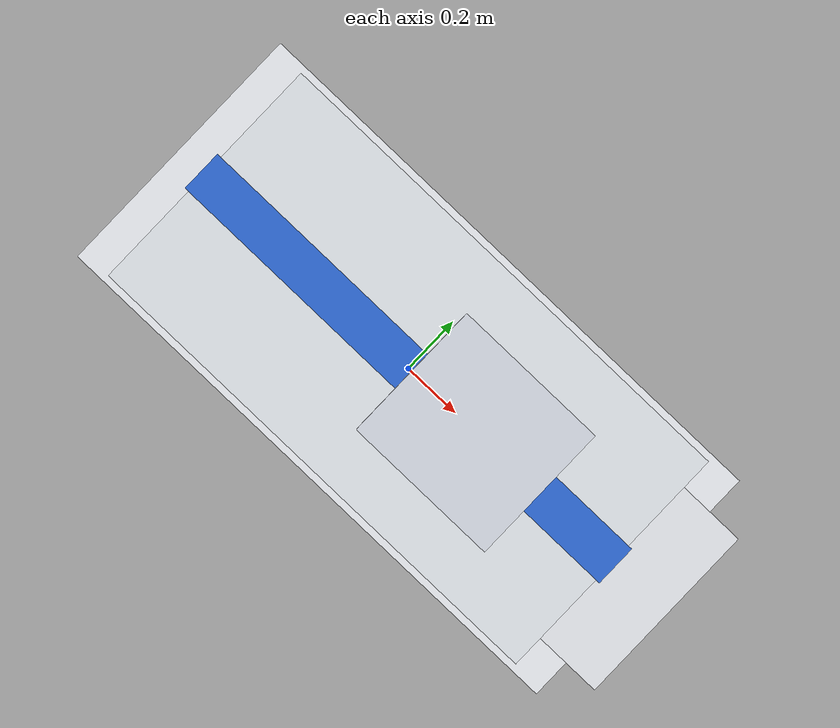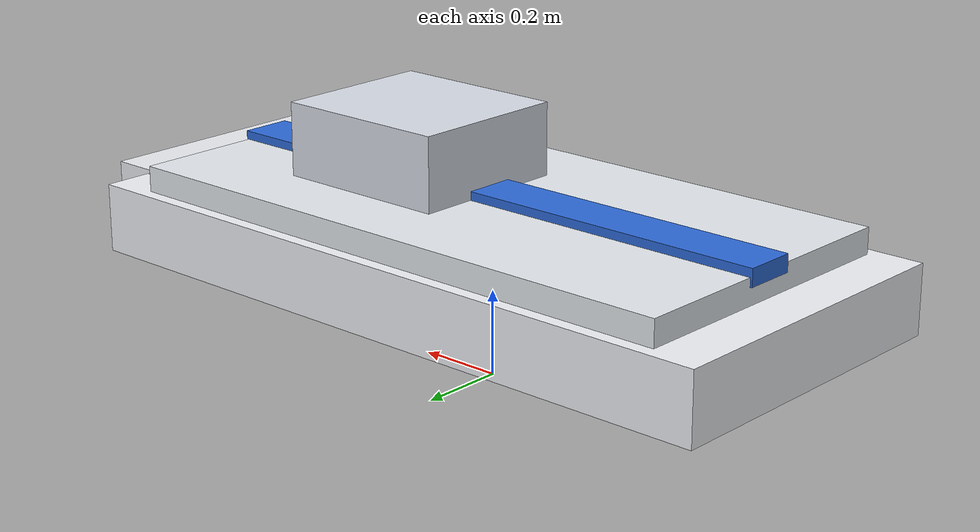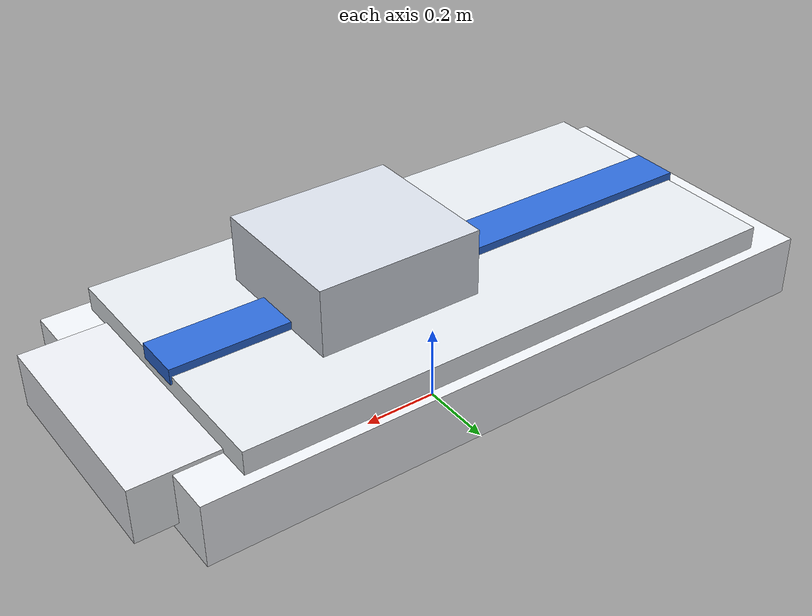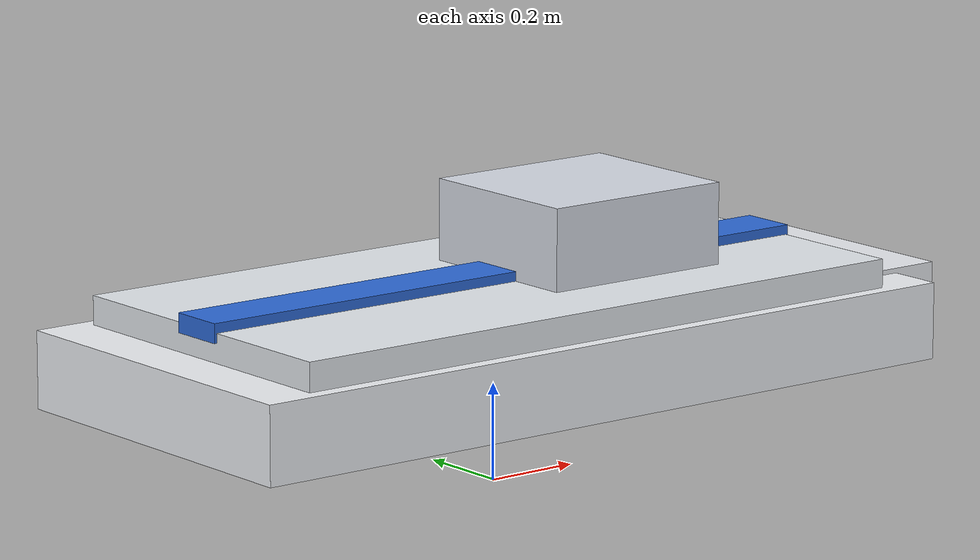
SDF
<?xml version="1.0" ?>
<sdf version="1.9">
  <model name="usv_model">
    <static>false</static>
    <pose>0 0 0.16 0 0 0</pose>

    <link name="base_link">
      <!-- SITL SetEntityPose yetkisi kaldirildi, fizik motoruna birakildi -->
      <gravity>true</gravity>
      <!-- Mass ve damping for stable motion on water -->
      <!-- FIX: Increased damping to reduce vibration, adjusted inertia for better stability -->
      <!-- m=18 kg; esdeger kutu ~ hull_collision 1.62 x 0.81 x 0.35 m, COM merkezde -->
      <inertial>
        <pose>0 0 0 0 0 0</pose>
        <mass>18.0</mass>
        <inertia>
          <ixx>1.168</ixx>
          <ixy>0</ixy>
          <ixz>0</ixz>
          <iyy>4.120</iyy>
          <iyz>0</iyz>
          <izz>4.921</izz>
        </inertia>
        <linear_damping>2.0</linear_damping>
        <angular_damping>1.0</angular_damping>
      </inertial>
      <!-- Basit tekne silueti: gergedan + guverte + konut; carpisma tek kutu. -->
      <!-- FIX: Fixed collision physics, better contact damping to reduce vibration -->
      <collision name="hull_collision">
        <pose>0 0 0.15 0 0 0</pose>
        <geometry>
          <box><size>1.62 0.81 0.35</size></box>
        </geometry>
        <surface>
          <friction>
            <ode>
              <mu>0.3</mu>
              <mu2>0.3</mu2>
            </ode>
          </friction>
          <contact>
            <ode>
              <soft_cfm>0.001</soft_cfm>
              <soft_erp>0.8</soft_erp>
              <max_vel>0.1</max_vel>
            </ode>
          </contact>
        </surface>
      </collision>

      <visual name="hull_bottom">
        <pose>0 0 0.12 0 0 0</pose>
        <geometry>
          <box><size>1.68 0.78 0.16</size></box>
        </geometry>
        <material>
          <ambient>0.92 0.93 0.95 1</ambient>
          <diffuse>0.94 0.95 0.97 1</diffuse>
          <specular>0.12 0.12 0.14 1</specular>
        </material>
      </visual>

      <visual name="deck">
        <pose>0 0 0.22 0 0 0</pose>
        <geometry>
          <box><size>1.45 0.72 0.08</size></box>
        </geometry>
        <material>
          <ambient>0.88 0.90 0.92 1</ambient>
          <diffuse>0.90 0.92 0.94 1</diffuse>
        </material>
      </visual>

      <visual name="stripe">
        <pose>0 0 0.26 0 0 0</pose>
        <geometry>
          <box><size>1.46 0.12 0.04</size></box>
        </geometry>
        <material>
          <ambient>0.15 0.35 0.72 1</ambient>
          <diffuse>0.18 0.42 0.85 1</diffuse>
        </material>
      </visual>

      <visual name="bow">
        <pose>0.78 0 0.14 0 0 0</pose>
        <geometry>
          <box><size>0.32 0.55 0.14</size></box>
        </geometry>
        <material>
          <ambient>0.90 0.91 0.93 1</ambient>
          <diffuse>0.92 0.93 0.95 1</diffuse>
        </material>
      </visual>

      <visual name="cabin">
        <pose>0.22 0 0.34 0 0 0</pose>
        <geometry>
          <box><size>0.42 0.38 0.18</size></box>
        </geometry>
        <material>
          <ambient>0.82 0.84 0.88 1</ambient>
          <diffuse>0.85 0.87 0.91 1</diffuse>
        </material>
      </visual>

      <!-- +X burun yönü; önceki 0.65 gövde ortasına yakındı, simde "kamera geriden" hissi için buruna yaklaştırıldı -->
      <sensor name="camera_sensor" type="camera">
        <pose>0.78 0 0.48 0 0.10 0</pose>
        <camera>
          <horizontal_fov>1.5708</horizontal_fov>
          <image>
            <width>640</width>
            <height>360</height>
            <format>R8G8B8</format>
          </image>
          <clip>
            <near>0.1</near>
            <far>50</far>
          </clip>
        </camera>
        <always_on>1</always_on>
        <update_rate>30</update_rate>
        <visualize>false</visualize>
        <topic>/camera/image_raw</topic>
      </sensor>

      <sensor name="lidar_sensor" type="gpu_lidar">
        <pose>0.65 0 0.28 0 0 0</pose>
        <topic>/scan</topic>
        <always_on>true</always_on>
        <update_rate>30</update_rate>
        <visualize>false</visualize>
        <ray>
          <scan>
            <horizontal>
              <samples>720</samples>
              <resolution>1</resolution>
              <min_angle>-3.14159</min_angle>
              <max_angle>3.14159</max_angle>
            </horizontal>
            <vertical>
              <samples>1</samples>
            </vertical>
          </scan>
          <range>
            <min>0.08</min>
            <max>20.0</max>
            <resolution>0.01</resolution>
          </range>
        </ray>
      </sensor>
    </link>

    <!-- Motor left thruster (virtual joint for control) -->
    <link name="motor_left_link">
      <gravity>false</gravity>
      <inertial>
        <mass>0.01</mass>
        <inertia>
          <ixx>0.0001</ixx>
          <ixy>0</ixy>
          <ixz>0</ixz>
          <iyy>0.0001</iyy>
          <iyz>0</iyz>
          <izz>0.0001</izz>
        </inertia>
      </inertial>
      <!-- Dummy collision to prevent ODE geometry crash -->
      <collision name="motor_left_collision">
        <geometry>
          <sphere><radius>0.01</radius></sphere>
        </geometry>
      </collision>
    </link>

    <!-- Motor right thruster (virtual joint for control) -->
    <link name="motor_right_link">
      <gravity>false</gravity>
      <inertial>
        <mass>0.01</mass>
        <inertia>
          <ixx>0.0001</ixx>
          <ixy>0</ixy>
          <ixz>0</ixz>
          <iyy>0.0001</iyy>
          <iyz>0</iyz>
          <izz>0.0001</izz>
        </inertia>
      </inertial>
      <!-- Dummy collision to prevent ODE geometry crash -->
      <collision name="motor_right_collision">
        <geometry>
          <sphere><radius>0.01</radius></sphere>
        </geometry>
      </collision>
    </link>

    <!-- Left motor joint: for force application -->
    <joint name="motor_left_joint" type="revolute">
      <parent>base_link</parent>
      <child>motor_left_link</child>
      <axis>
        <xyz>0 1 0</xyz>
      </axis>
      <limit>
        <lower>-3.14159</lower>
        <upper>3.14159</upper>
        <effort>50</effort>
        <velocity>100</velocity>
      </limit>
    </joint>

    <!-- Right motor joint: for force application -->
    <joint name="motor_right_joint" type="revolute">
      <parent>base_link</parent>
      <child>motor_right_link</child>
      <axis>
        <xyz>0 1 0</xyz>
      </axis>
      <limit>
        <lower>-3.14159</lower>
        <upper>3.14159</upper>
        <effort>50</effort>
        <velocity>100</velocity>
      </limit>
    </joint>

    <!-- Odometry Publisher for JSON Backend -->
    <plugin filename="libignition-gazebo-odometry-publisher-system.so" name="ignition::gazebo::systems::OdometryPublisher">
      <odom_publish_frequency>100</odom_publish_frequency>
      <odom_frame>world</odom_frame>
      <robot_base_frame>base_link</robot_base_frame>
      <odom_topic>/model/usv_model/odometry</odom_topic>
    </plugin>

    <plugin filename="libignition-gazebo-velocity-control-system.so" name="ignition::gazebo::systems::VelocityControl">
      <link_name>base_link</link_name>
      <topic>/cmd_vel</topic>
      <initial_linear>0 0 0</initial_linear>
      <initial_angular>0 0 0</initial_angular>
    </plugin>

  </model>
</sdf>
